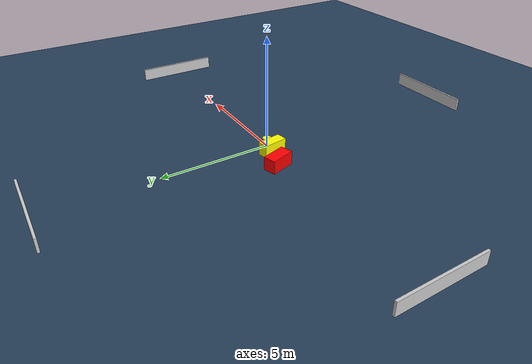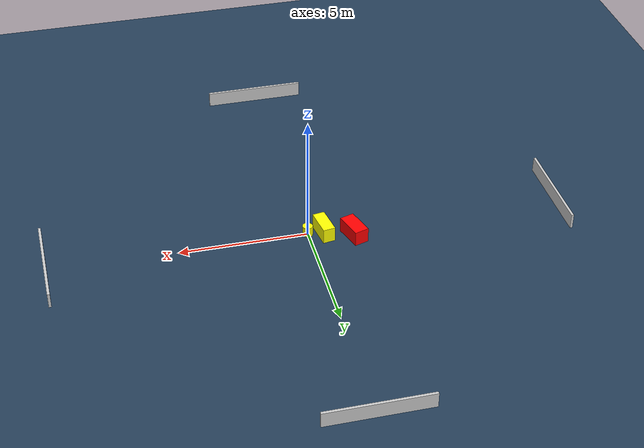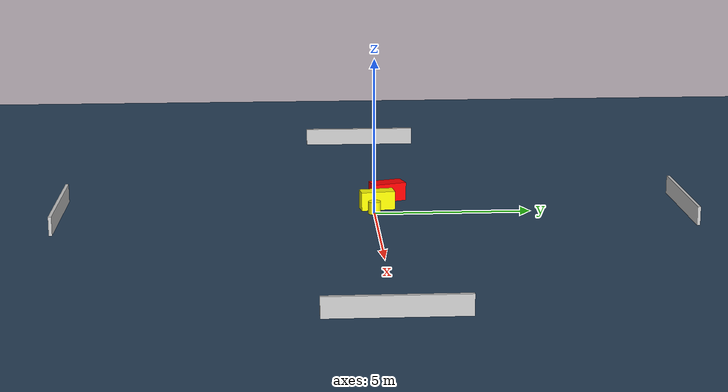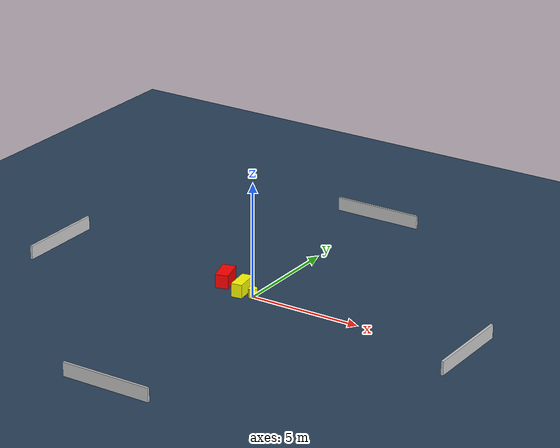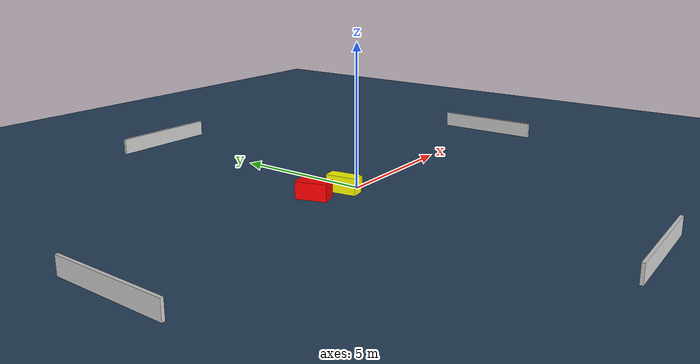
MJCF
<?xml version="1.0" ?>
<mujoco model="generated_environment">
  <option timestep="0.01" integrator="RK4" cone="elliptic"/>
  <default>
    <geom density="1"/>
  </default>
  <asset>
    <texture builtin="gradient" height="3072" name="skybox" rgb1="0.3 0.5 0.7" rgb2="0 0 0" type="skybox" width="512"/>
    <texture builtin="checker" height="300" name="groundplane" rgb1="0.2 0.3 0.4" rgb2="0.1 0.2 0.3" type="2d" width="300"/>
    <material name="groundplane" reflectance="0.2" texrepeat="5 5" texture="groundplane"/>
  </asset>
  <worldbody>
    <light dir="0 0 -1" directional="true" pos="0 0 1.5"/>
    <geom condim="3" friction="0.5 0.005 0.001" material="groundplane" name="floor" pos="0 0 0" size="0 0 0.05" type="plane"/>
    <body name="walls">
      <geom name="wall_1" condim="4" pos="-10.0 0.0 0.3" rgba="0.800000011920929 0.800000011920929 0.800000011920929 1.0" size="0.05 2.0 0.3" type="box"/>
      <geom name="wall_2" condim="4" pos="10.0 0.0 0.3" rgba="0.800000011920929 0.800000011920929 0.800000011920929 1.0" size="0.05 2.0 0.3" type="box"/>
      <geom name="wall_3" condim="4" pos="0.0 -10.0 0.3" rgba="0.800000011920929 0.800000011920929 0.800000011920929 1.0" size="2.0 0.05 0.3" type="box"/>
      <geom name="wall_4" condim="4" pos="0.0 10.0 0.3" rgba="0.800000011920929 0.800000011920929 0.800000011920929 1.0" size="2.0 0.05 0.3" type="box"/>
    </body>
    <body name="robot">
      <joint name="joint_x" type="slide" pos="0 0 0" axis="1 0 0"/>
      <joint name="joint_y" type="slide" pos="0 0 0" axis="0 1 0"/>
      <geom name="robot" type="cylinder" pos="0.0 0.0 0.2" size="0.2 0.2 0.0" mass="5.0" friction="1.0 0.005 0.0001" condim="4" rgba="1.0 1.0 0.0 1.0"/>
    </body>
    <body name="obstacle_1_movable">
      <geom name="obstacle_1_movable" condim="4" pos="-0.6058139608671005 0.11493934532749087 0.3" euler="0 0 188.5284737021874" friction="0.0 0.005 0.001" rgba="1.0 1.0 0.0 1.0" size="0.24004627166318632 0.5485357267345301 0.3" type="box" mass="0.1"/>
      <joint type="free"/>
    </body>
    <body name="obstacle_2_static">
      <geom name="obstacle_2_static" condim="4" pos="-1.7029702348961062 0.5192278609068557 0.3" euler="0 0 17.18277860647023" friction="0.0 0.005 0.001" rgba="1.0 0.0 0.0 1.0" size="0.2865071691751279 0.5521872571375308 0.3" type="box"/>
    </body>
  </worldbody>
  <actuator>
    <motor name="actuator_x" joint="joint_x" gear="1" ctrlrange="-1 1"/>
    <motor name="actuator_y" joint="joint_y" gear="1" ctrlrange="-1 1"/>
  </actuator>
</mujoco>
